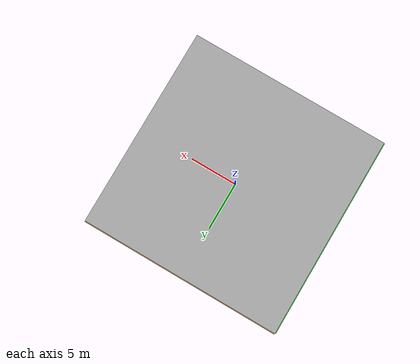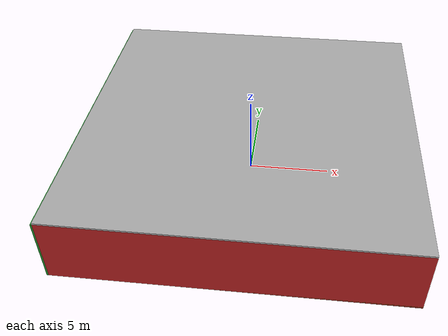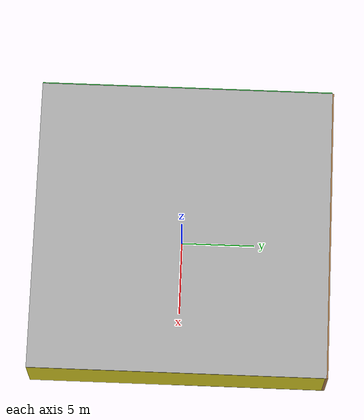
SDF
<sdf version="1.4">
 <world name="default">
  <physics type="ode">
   <max_step_size>0.001</max_step_size>
   <real_time_factor>1</real_time_factor>
   <real_time_update_rate>1000</real_time_update_rate>
   <gravity>0 0 -9.8</gravity>
  </physics>
  <scene><ambient>0.4 0.4 0.4 1</ambient><background>0.7 0.7 0.7 1</background><shadows>1</shadows></scene>
  <model name="Surrounding">
   <static>1</static>
   <link name="Ceiling">
    <collision name="Ceiling_Collision"><geometry><box><size>20 20 0.1</size></box></geometry></collision>
    <visual name="Ceiling_Visual">
     <geometry><box><size>20 20 0.1</size></box></geometry>
     <material>
      <script><uri>file://media/materials/scripts/gazebo.material</uri><name>Gazebo/LightOff</name></script>
     </material>
    </visual>
    <pose>0 0 4.05 0 0 0</pose>
   </link>
   <link name="Wall_South">
    <collision name="Wall_South_Collision">
     <geometry><box><size>20 0 4</size></box></geometry>
     <pose>0 0 2 0 -0 0</pose>
    </collision>
    <visual name="Wall_South_Visual">
     <pose>0 0 2 0 -0 0</pose>
     <geometry><box><size>20 0 4</size></box></geometry>
     <material>
      <script><uri>file://media/materials/scripts/gazebo.material</uri><name>Gazebo/Red</name></script>
     </material>
    </visual>
    <velocity_decay><linear>0</linear><angular>0</angular></velocity_decay>
    <pose>0 -10 0 0 -0 0</pose>
   </link>
   <link name="Wall_East">
    <collision name="Wall_21_Collision">
     <geometry><box><size>20 0 4</size></box></geometry>
     <pose>0 0 2 0 -0 0</pose>
    </collision>
    <visual name="Wall_21_Visual">
     <pose>0 0 2 0 -0 0</pose>
     <geometry><box><size>20 0 4</size></box></geometry>
     <material>
      <script><uri>file://media/materials/scripts/gazebo.material</uri><name>Gazebo/YellowGlow</name></script>
     </material>
    </visual>
    <velocity_decay><linear>0</linear><angular>0</angular></velocity_decay>
    <pose>10 0 0 0 -0 1.5708</pose>
   </link>
   <link name="Wall_North">
    <collision name="Wall_22_Collision">
     <geometry><box><size>20 0.2 4</size></box></geometry>
     <pose>0 0 2 0 -0 0</pose>
    </collision>
    <visual name="Wall_22_Visual">
     <pose>0 0 2 0 -0 0</pose>
     <geometry><box><size>20 0.2 4</size></box></geometry>
     <material>
      <script><uri>file://media/materials/scripts/gazebo.material</uri><name>Gazebo/WoodPallet</name></script>
     </material>
    </visual>
    <velocity_decay><linear>0</linear><angular>0</angular></velocity_decay>
    <pose>0 10 0 0 -0 0</pose>
   </link>
   <link name="Wall_West">
    <collision name="Wall_23_Collision">
     <geometry><box><size>20 0.2 4</size></box></geometry>
     <pose>0 0 2 0 -0 0</pose>
    </collision>
    <visual name="Wall_23_Visual">
     <pose>0 0 2 0 -0 0</pose>
     <geometry><box><size>20 0.2 4</size></box></geometry>
     <material>
      <script><uri>file://media/materials/scripts/gazebo.material</uri><name>Gazebo/Green</name></script>
     </material>
    </visual>
    <velocity_decay><linear>0</linear><angular>0</angular></velocity_decay>
    <pose>-10 0 0 0 0 -1.5708</pose>
   </link>
   <link name="Ground_link">
    <collision name="collision">
     <pose>0 0 .05 0 -0 0</pose>
     <geometry><box><size>20 20 0.1</size></box></geometry>
    </collision>
    <visual name="visual">
     <pose>0 0 .05 0 -0 0</pose>
     <geometry><box><size>20 20 0.1</size></box></geometry>
     <material>
      <script>
       <uri>file://media/materials/scripts/gazebo.material</uri>
       <name>Gazebo/YellowTransparent</name>
      </script>
     </material>
    </visual>
   </link>
   <static>1</static>
  </model>
  <spherical_coordinates>
   <surface_model>EARTH_WGS84</surface_model>
   <latitude_deg>0</latitude_deg>
   <longitude_deg>0</longitude_deg>
   <elevation>0</elevation>
   <heading_deg>0</heading_deg>
  </spherical_coordinates>
  <light name="lightball_0" type="diffuse">
   <diffuse>0.8 0.8 0.8 1</diffuse>
   <specular>0.2 0.2 0.2 1</specular>
   <attenuation>
    <range>100</range>
    <constant>0.7</constant>
    <linear>0.01</linear>
    <quadratic>0.001</quadratic>
   </attenuation>
   <direction>-0.5 0.1 -0.9</direction>
   <pose>0.446927725199 5.13465580869 2.59139329077 0 0 0</pose>
  </light>
  <light name="lightball_1" type="diffuse">
   <diffuse>0.8 0.8 0.8 1</diffuse>
   <specular>0.2 0.2 0.2 1</specular>
   <attenuation>
    <range>100</range>
    <constant>0.7</constant>
    <linear>0.01</linear>
    <quadratic>0.001</quadratic>
   </attenuation>
   <direction>-0.5 0.1 -0.9</direction>
   <pose>-5.39097313781 8.04795486372 1.97113957875 0 0 0</pose>
  </light>
  <light name="lightball_2" type="diffuse">
   <diffuse>0.8 0.8 0.8 1</diffuse>
   <specular>0.2 0.2 0.2 1</specular>
   <attenuation>
    <range>100</range>
    <constant>0.7</constant>
    <linear>0.01</linear>
    <quadratic>0.001</quadratic>
   </attenuation>
   <direction>-0.5 0.1 -0.9</direction>
   <pose>5.53963494896 -7.26826774703 2.19771977078 0 0 0</pose>
  </light>
  <light name="lightball_3" type="diffuse">
   <diffuse>0.8 0.8 0.8 1</diffuse>
   <specular>0.2 0.2 0.2 1</specular>
   <attenuation>
    <range>100</range>
    <constant>0.7</constant>
    <linear>0.01</linear>
    <quadratic>0.001</quadratic>
   </attenuation>
   <direction>-0.5 0.1 -0.9</direction>
   <pose>-7.60157819922 -2.4074104784 2.29268766843 0 0 0</pose>
  </light>
  <light name="lightball_4" type="diffuse">
   <diffuse>0.8 0.8 0.8 1</diffuse>
   <specular>0.2 0.2 0.2 1</specular>
   <attenuation>
    <range>100</range>
    <constant>0.7</constant>
    <linear>0.01</linear>
    <quadratic>0.001</quadratic>
   </attenuation>
   <direction>-0.5 0.1 -0.9</direction>
   <pose>-6.37638769514 -5.2543304201 1.39979550865 0 0 0</pose>
  </light>
  <light name="lightball_5" type="diffuse">
   <diffuse>0.8 0.8 0.8 1</diffuse>
   <specular>0.2 0.2 0.2 1</specular>
   <attenuation>
    <range>100</range>
    <constant>0.7</constant>
    <linear>0.01</linear>
    <quadratic>0.001</quadratic>
   </attenuation>
   <direction>-0.5 0.1 -0.9</direction>
   <pose>5.29165364027 1.21261756318 0.651022187369 0 0 0</pose>
  </light>
  <light name="lightball_6" type="diffuse">
   <diffuse>0.8 0.8 0.8 1</diffuse>
   <specular>0.2 0.2 0.2 1</specular>
   <attenuation>
    <range>100</range>
    <constant>0.7</constant>
    <linear>0.01</linear>
    <quadratic>0.001</quadratic>
   </attenuation>
   <direction>-0.5 0.1 -0.9</direction>
   <pose>6.77919525976 7.3758683015 0.825196145983 0 0 0</pose>
  </light>
  <light name="lightball_7" type="diffuse">
   <diffuse>0.8 0.8 0.8 1</diffuse>
   <specular>0.2 0.2 0.2 1</specular>
   <attenuation>
    <range>100</range>
    <constant>0.7</constant>
    <linear>0.01</linear>
    <quadratic>0.001</quadratic>
   </attenuation>
   <direction>-0.5 0.1 -0.9</direction>
   <pose>6.10279074174 2.34462173697 1.37963301959 0 0 0</pose>
  </light>
  <light name="lightball_8" type="diffuse">
   <diffuse>0.8 0.8 0.8 1</diffuse>
   <specular>0.2 0.2 0.2 1</specular>
   <attenuation>
    <range>100</range>
    <constant>0.7</constant>
    <linear>0.01</linear>
    <quadratic>0.001</quadratic>
   </attenuation>
   <direction>-0.5 0.1 -0.9</direction>
   <pose>5.44864011427 4.0215933546 1.00194140436 0 0 0</pose>
  </light>
  <include><uri>model://cabinet</uri><pose>-7.5272032596 -3.88794788232 0 0 0 0.615229024156</pose></include>
  <include>
   <uri>model://construction_cone</uri>
   <pose>-3.85897962284 -5.08591042408 0 0 0 1.20315551205</pose>
  </include>
  <include><uri>model://table</uri><pose>-0.840845532234 1.04946192716 0 0 0 2.30906043774</pose></include>
  <include><uri>model://cabinet</uri><pose>1.5459200004 -7.06652139435 0 0 0 3.04022038129</pose></include>
  <include>
   <uri>model://textured_shapes</uri>
   <pose>1.41590798078 -4.14254276993 0 0 0 0.392935600922</pose>
  </include>
 </world>
</sdf>

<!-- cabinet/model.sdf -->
<sdf version="1.5">
  <model name="cabinet">
    <static>true</static>
    <link name="cabinet_bottom_plate">
      <inertial>
        <pose>0 0 -1 0 0 0</pose>
        <inertia>
          <ixx>2.050000</ixx>
          <ixy>0</ixy>
          <ixz>0</ixz>
          <iyy>2.050000</iyy>
          <iyz>0</iyz>
          <izz>2.050000</izz>
        </inertia>
        <mass>25.000000</mass>
      </inertial>
      <collision name="cabinet_bottom_plate_geom">
        <pose>0 0 0.010000 0 0 0</pose>
        <geometry>
          <box>
            <size>0.450000 0.450000 0.020000</size>
          </box>
        </geometry>
      </collision>
      <visual name="cabinet_bottom_plate_geom_visual">
        <pose>0 0 0.010000 0 0 0</pose>
        <geometry>
          <box>
            <size>0.450000 0.450000 0.020000</size>
          </box>
        </geometry>
        <material>
          <script>
            <uri>model://media/materials/scripts/gazebo.material</uri>
            <name>Gazebo/Wood</name>
          </script>
        </material>
      </visual>
      <collision name="cabinet_bottom_plate_geom_cabinet_back_plate">
        <pose>0.235000 0 0.510000 0 0 0</pose>
        <geometry>
          <box>
            <size>0.020000 0.450000 1.020000</size>
          </box>
        </geometry>
      </collision>
      <visual name="cabinet_bottom_plate_geom_cabinet_back_plate_visual">
        <pose>0.235000 0 0.510000 0 0 0</pose>
        <geometry>
          <box>
            <size>0.020000 0.450000 1.020000</size>
          </box>
        </geometry>
        <material>
          <script>
            <uri>model://media/materials/scripts/gazebo.material</uri>
            <name>Gazebo/Wood</name>
          </script>
        </material>
      </visual>
      <collision name="cabinet_bottom_plate_geom_cabinet_left_plate">
        <pose>0 0.235000 0.510000 0 0 0</pose>
        <geometry>
          <box>
            <size>0.450000 0.020000 1.020000</size>
          </box>
        </geometry>
      </collision>
      <visual name="cabinet_bottom_plate_geom_cabinet_left_plate_visual">
        <pose>0 0.235000 0.510000 0 0 0</pose>
        <geometry>
          <box>
            <size>0.450000 0.020000 1.020000</size>
          </box>
        </geometry>
        <material>
          <script>
            <uri>model://media/materials/scripts/gazebo.material</uri>
            <name>Gazebo/Wood</name>
          </script>
        </material>
      </visual>
      <collision name="cabinet_bottom_plate_geom_cabinet_middle_plate">
        <pose>0 0 0.510000 0 0 0</pose>
        <geometry>
          <box>
            <size>0.450000 0.450000 0.020000</size>
          </box>
        </geometry>
      </collision>
      <visual name="cabinet_bottom_plate_geom_cabinet_middle_plate_visual">
        <pose>0 0 0.510000 0 0 0</pose>
        <geometry>
          <box>
            <size>0.450000 0.450000 0.020000</size>
          </box>
        </geometry>
        <material>
          <script>
            <uri>model://media/materials/scripts/gazebo.material</uri>
            <name>Gazebo/Wood</name>
          </script>
        </material>
      </visual>
      <collision name="cabinet_bottom_plate_geom_cabinet_right_plate">
        <pose>0 -0.235000 0.510000 0 0 0</pose>
        <geometry>
          <box>
            <size>0.450000 0.020000 1.020000</size>
          </box>
        </geometry>
      </collision>
      <visual name="cabinet_bottom_plate_geom_cabinet_right_plate_visual">
        <pose>0 -0.235000 0.510000 0 0 0</pose>
        <geometry>
          <box>
            <size>0.450000 0.020000 1.020000</size>
          </box>
        </geometry>
        <material>
          <script>
            <uri>model://media/materials/scripts/gazebo.material</uri>
            <name>Gazebo/Wood</name>
          </script>
        </material>
      </visual>
      <collision name="cabinet_bottom_plate_geom_cabinet_top_plate">
        <pose>0 0 1.010000 0 0 0</pose>
        <geometry>
          <box>
            <size>0.450000 0.450000 0.020000</size>
          </box>
        </geometry>
      </collision>
      <visual name="cabinet_bottom_plate_geom_cabinet_top_plate_visual">
        <pose>0 0 1.010000 0 0 0</pose>
        <geometry>
          <box>
            <size>0.450000 0.450000 0.020000</size>
          </box>
        </geometry>
        <material>
          <script>
            <uri>model://media/materials/scripts/gazebo.material</uri>
            <name>Gazebo/Wood</name>
          </script>
        </material>
      </visual>
    </link>
  </model>
</sdf>

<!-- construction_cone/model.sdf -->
<sdf version="1.5">
  <model name="Construction Cone">
    <link name="link">
      <collision name="collision">
        <geometry>
          <mesh>
            <scale>10 10 10</scale>
            <uri>file://isr-testbed/construction_cone/meshes/construction_cone.dae</uri>
          </mesh>
        </geometry>
      </collision>
      <visual name="visual">
        <geometry>
          <mesh>
            <scale>10 10 10</scale>
            <uri>file://isr-testbed/construction_cone/meshes/construction_cone.dae</uri>
          </mesh>
        </geometry>
      </visual>
    </link>
  </model>
</sdf>

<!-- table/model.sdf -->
<sdf version="1.5">
  <model name="table">
    <static>true</static>
    <link name="link">
      <collision name="surface">
        <pose>0 0 1.0 0 0 0</pose>
        <geometry>
          <box>
            <size>1.5 0.8 0.03</size>
          </box>
        </geometry>
        <surface>
          <friction>
            <ode>
              <mu>0.6</mu>
              <mu2>0.6</mu2>
            </ode>
          </friction>
        </surface>
      </collision>
      <visual name="visual1">
        <pose>0 0 1.0 0 0 0</pose>
        <geometry>
          <box>
            <size>1.5 0.8 0.03</size>
          </box>
        </geometry>
        <material>
          <script>
            <uri>model://media/materials/scripts/gazebo.material</uri>
            <name>Gazebo/Wood</name>
          </script>
        </material>
      </visual>
      <collision name="front_left_leg">
        <pose>0.68 0.38 0.5 0 0 0</pose>
        <geometry>
          <cylinder>
            <radius>0.02</radius>
            <length>1.0</length>
          </cylinder>
        </geometry>
      </collision>
      <visual name="front_left_leg">
        <pose>0.68 0.38 0.5 0 0 0</pose>
        <geometry>
          <cylinder>
            <radius>0.02</radius>
            <length>1.0</length>
          </cylinder>
        </geometry>
        <material>
          <script>
            <uri>model://media/materials/scripts/gazebo.material</uri>
            <name>Gazebo/Grey</name>
          </script>
        </material>
      </visual>
      <collision name="front_right_leg">
        <pose>0.68 -0.38 0.5 0 0 0</pose>
        <geometry>
          <cylinder>
            <radius>0.02</radius>
            <length>1.0</length>
          </cylinder>
        </geometry>
      </collision>
      <visual name="front_right_leg">
        <pose>0.68 -0.38 0.5 0 0 0</pose>
        <geometry>
          <cylinder>
            <radius>0.02</radius>
            <length>1.0</length>
          </cylinder>
        </geometry>
        <material>
          <script>
            <uri>model://media/materials/scripts/gazebo.material</uri>
            <name>Gazebo/Grey</name>
          </script>
        </material>
      </visual>
      <collision name="back_right_leg">
        <pose>-0.68 -0.38 0.5 0 0 0</pose>
        <geometry>
          <cylinder>
            <radius>0.02</radius>
            <length>1.0</length>
          </cylinder>
        </geometry>
      </collision>
      <visual name="back_right_leg">
        <pose>-0.68 -0.38 0.5 0 0 0</pose>
        <geometry>
          <cylinder>
            <radius>0.02</radius>
            <length>1.0</length>
          </cylinder>
        </geometry>
        <material>
          <script>
            <uri>model://media/materials/scripts/gazebo.material</uri>
            <name>Gazebo/Grey</name>
          </script>
        </material>
      </visual>
      <collision name="back_left_leg">
        <pose>-0.68 0.38 0.5 0 0 0</pose>
        <geometry>
          <cylinder>
            <radius>0.02</radius>
            <length>1.0</length>
          </cylinder>
        </geometry>
      </collision>
      <visual name="back_left_leg">
        <pose>-0.68 0.38 0.5 0 0 0</pose>
        <geometry>
          <cylinder>
            <radius>0.02</radius>
            <length>1.0</length>
          </cylinder>
        </geometry>
        <material>
          <script>
            <uri>model://media/materials/scripts/gazebo.material</uri>
            <name>Gazebo/Grey</name>
          </script>
        </material>
      </visual>
    </link>
  </model>
</sdf>

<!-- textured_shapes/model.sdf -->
<sdf version="1.6">
  <model name="textured_shapes">
    <pose>0 0 0.5 0 0 0</pose>
    <link name="box">
      <pose>0 -1.5 0 0 0 0</pose>
      <collision name="collision">
        <geometry>
          <box>
            <size>1 1 1</size>
          </box>
        </geometry>
      </collision>
      <visual name="visual">
        <geometry>
          <box>
            <size>1 1 1</size>
          </box>
        </geometry>
        <material>
          <script>
            <uri>model://../model_source/models/textured_shapes/materials/scripts</uri>
            <uri>model://../model_source/models/textured_shapes/materials/textures</uri>
            <name>TexturedShape/Squares</name>
          </script>
        </material>
      </visual>
    </link>
    <link name="sphere">
      <collision name="collision">
        <geometry>
          <sphere>
            <radius>0.5</radius>
          </sphere>
        </geometry>
      </collision>
      <visual name="visual">
        <geometry>
          <sphere>
            <radius>0.5</radius>
          </sphere>
        </geometry>
        <material>
          <script>
            <uri>model://../model_source/models/textured_shapes/materials/scripts</uri>
            <uri>model://../model_source/models/textured_shapes/materials/textures</uri>
            <name>TexturedShape/Squares</name>
          </script>
        </material>
      </visual>
    </link>
    <link name="cylinder">
      <pose>0 1.5 0 0 0 0</pose>
      <collision name="collision">
        <geometry>
          <cylinder>
            <radius>0.5</radius>
            <length>1</length>
          </cylinder>
        </geometry>
      </collision>
      <visual name="visual">
        <geometry>
          <cylinder>
            <radius>0.5</radius>
            <length>1</length>
          </cylinder>
        </geometry>
        <material>
          <script>
            <uri>model://../model_source/models/textured_shapes/materials/scripts</uri>
            <uri>model://../model_source/models/textured_shapes/materials/textures</uri>
            <name>TexturedShape/Squares</name>
          </script>
        </material>
      </visual>
    </link>
  </model>
</sdf>
